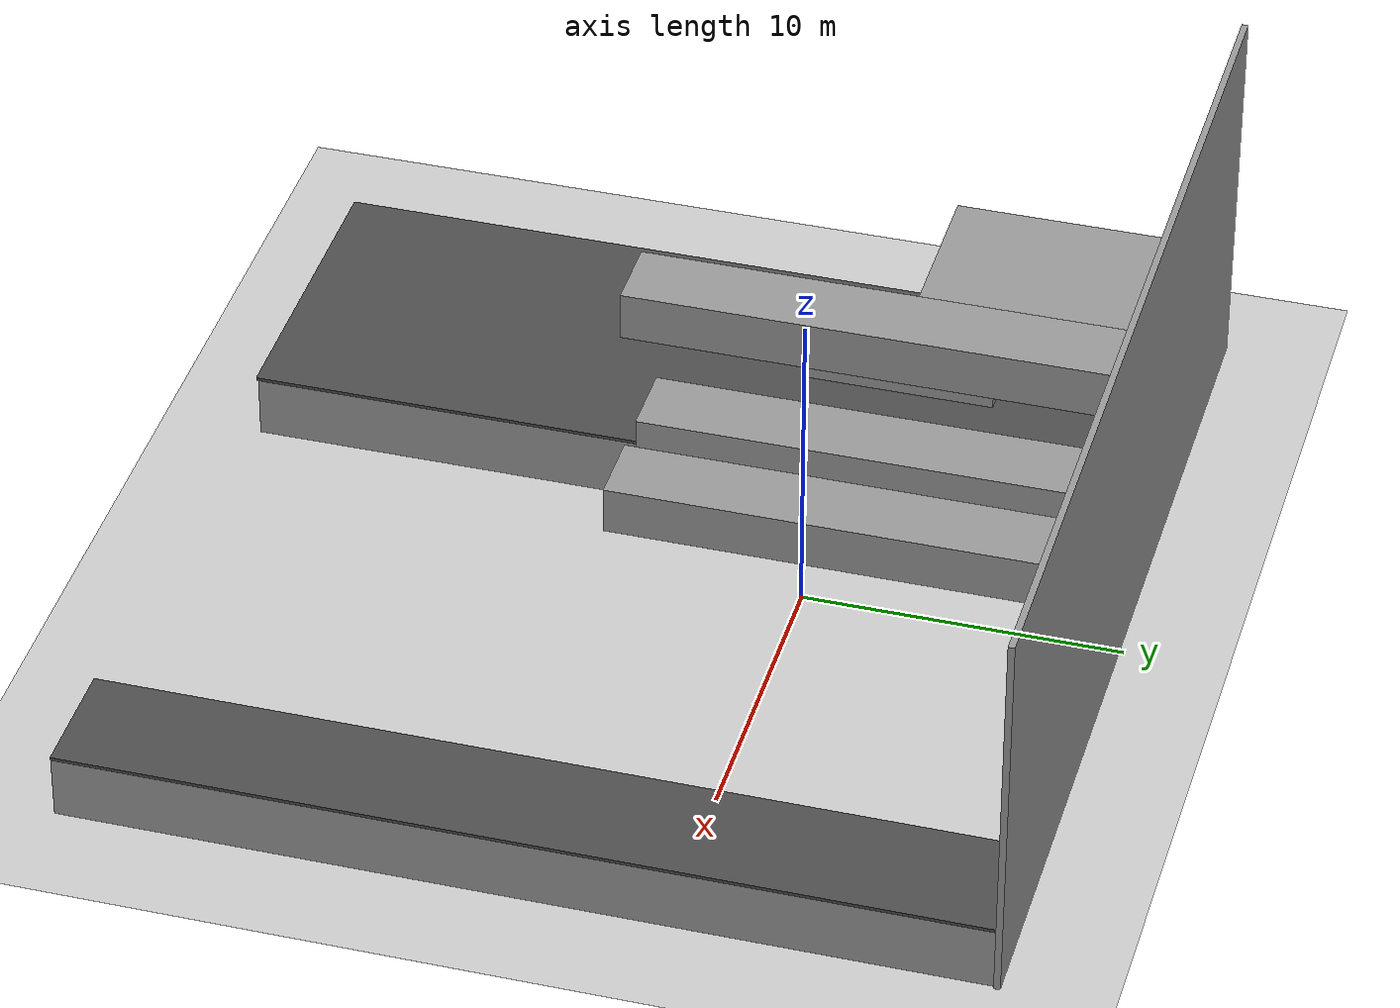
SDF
<sdf version="1.6">
 <world name="default">
  <light name="sun" type="directional">
   <pose>0 0 10 0 -0 0</pose>
   <diffuse>0.8 0.8 0.8 1</diffuse>
   <specular>0.2 0.2 0.2 1</specular>
   <attenuation>
    <range>1000</range>
    <constant>0.9</constant>
    <linear>0.01</linear>
    <quadratic>0.001</quadratic>
   </attenuation>
   <direction>-0.5 0.1 -0.9</direction>
  </light>
  <model name="ground_plane">
   <static>1</static>
   <link name="link">
    <collision name="collision">
     <geometry><plane><normal>0 0 1</normal><size>100 100</size></plane></geometry>
     <surface><friction><ode><mu>100</mu><mu2>50</mu2></ode></friction></surface>
    </collision>
    <visual name="visual">
     <cast_shadows>0</cast_shadows>
     <geometry><plane><normal>0 0 1</normal><size>100 100</size></plane></geometry>
     <material>
      <script><uri>file://media/materials/scripts/gazebo.material</uri><name>Gazebo/Grey</name></script>
     </material>
    </visual>
   </link>
  </model>
  <gravity>0 0 -9.8</gravity>
  <magnetic_field>6e-06 2.3e-05 -4.2e-05</magnetic_field>
  <atmosphere type="adiabatic"/>
  <physics name="default_physics" default="0" type="ode">
   <max_step_size>0.001</max_step_size>
   <real_time_factor>1</real_time_factor>
   <real_time_update_rate>1000</real_time_update_rate>
  </physics>
  <scene><ambient>0.4 0.4 0.4 1</ambient><background>0.7 0.7 0.7 1</background><shadows>1</shadows></scene>
  <spherical_coordinates>
   <surface_model>EARTH_WGS84</surface_model>
   <latitude_deg>0</latitude_deg>
   <longitude_deg>0</longitude_deg>
   <elevation>0</elevation>
   <heading_deg>0</heading_deg>
  </spherical_coordinates>
  <model name="wood_block_10_2_1cm">
   <link name="link">
    <pose>0 0 0.005 0 -0 0</pose>
    <inertial>
     <mass>0.0125</mass>
     <inertia>
      <ixx>7.55208e-07</ixx>
      <ixy>0</ixy>
      <ixz>0</ixz>
      <iyy>1.05208e-05</iyy>
      <iyz>0</iyz>
      <izz>1.10677e-05</izz>
     </inertia>
    </inertial>
    <collision name="collision">
     <geometry><box><size>0.1 0.025 0.01</size></box></geometry>
     <surface>
      <contact>
       <poissons_ratio>0.347</poissons_ratio>
       <elastic_modulus>8.8e+09</elastic_modulus>
       <ode><kp>100000</kp><kd>1</kd><max_vel>1</max_vel><min_depth>0.001</min_depth></ode>
      </contact>
      <friction>
       <torsional>
        <coefficient>1</coefficient>
        <use_patch_radius>0</use_patch_radius>
        <surface_radius>0.05</surface_radius>
       </torsional>
      </friction>
     </surface>
    </collision>
    <visual name="visual">
     <geometry><box><size>0.1 0.025 0.01</size></box></geometry>
     <material>
      <script><uri>file://media/materials/scripts/gazebo.material</uri><name>Gazebo/Wood</name></script>
     </material>
    </visual>
   </link>
   <pose>-15.2712 -9.75357 -0.001 0 -0 4e-06</pose>
  </model>
  <model name="stage_7_model_2">
   <link name="link_0">
    <inertial>
     <mass>1.78308</mass>
     <inertia><ixx>118.07</ixx><ixy>0</ixy><ixz>0</ixz><iyy>2.7027</iyy><iyz>0</iyz><izz>119.584</izz></inertia>
    </inertial>
    <pose>13.855 -4.6516 -0.856819 0 -0 0</pose>
    <visual name="visual">
     <geometry><box><size>3.76682 28.1177 2</size></box></geometry>
     <material>
      <lighting>1</lighting>
      <script><uri>file://media/materials/scripts/gazebo.material</uri><name>Gazebo/Grey</name></script>
      <shader type="pixel"><normal_map>__default__</normal_map></shader>
      <ambient>0.3 0.3 0.3 1</ambient>
      <diffuse>0.7 0.7 0.7 1</diffuse>
      <specular>0.01 0.01 0.01 1</specular>
      <emissive>0 0 0 1</emissive>
     </material>
    </visual>
    <collision name="collision">
     <geometry><box><size>3.76682 28.1177 2</size></box></geometry>
     <surface>
      <friction>
       <ode><mu>1</mu><mu2>1</mu2><fdir1>0 0 0</fdir1><slip1>0</slip1><slip2>0</slip2></ode>
       <torsional>
        <coefficient>1</coefficient>
        <patch_radius>0</patch_radius>
        <surface_radius>0</surface_radius>
        <use_patch_radius>1</use_patch_radius>
        <ode><slip>0</slip></ode>
       </torsional>
      </friction>
      <bounce><restitution_coefficient>0</restitution_coefficient><threshold>1e+06</threshold></bounce>
      <contact>
       <collide_without_contact>0</collide_without_contact>
       <collide_without_contact_bitmask>1</collide_without_contact_bitmask>
       <collide_bitmask>1</collide_bitmask>
       <ode>
        <soft_cfm>0</soft_cfm>
        <soft_erp>0.2</soft_erp>
        <kp>1e+13</kp>
        <kd>1</kd>
        <max_vel>0.01</max_vel>
        <min_depth>0</min_depth>
       </ode>
       <bullet>
        <split_impulse>1</split_impulse>
        <split_impulse_penetration_threshold>-0.01</split_impulse_penetration_threshold>
        <soft_cfm>0</soft_cfm>
        <soft_erp>0.2</soft_erp>
        <kp>1e+13</kp>
        <kd>1</kd>
       </bullet>
      </contact>
     </surface>
    </collision>
   </link>
   <link name="link_0_clone">
    <inertial>
     <mass>10.6661</mass>
     <inertia><ixx>166.876</ixx><ixy>0</ixy><ixz>0</ixz><iyy>92.4397</iyy><iyz>0</iyz><izz>252.205</izz></inertia>
    </inertial>
    <pose>-8.47443 -4.74682 -0.856819 0 -0 0</pose>
    <visual name="visual">
     <geometry><box><size>10 28.1177 2</size></box></geometry>
     <material>
      <lighting>1</lighting>
      <script><uri>file://media/materials/scripts/gazebo.material</uri><name>Gazebo/Grey</name></script>
      <shader type="pixel"><normal_map>__default__</normal_map></shader>
      <ambient>0.3 0.3 0.3 1</ambient>
      <diffuse>0.7 0.7 0.7 1</diffuse>
      <specular>0.01 0.01 0.01 1</specular>
      <emissive>0 0 0 1</emissive>
     </material>
    </visual>
    <collision name="collision">
     <geometry><box><size>10 28.1177 2</size></box></geometry>
     <surface>
      <friction>
       <ode><mu>1</mu><mu2>1</mu2><fdir1>0 0 0</fdir1><slip1>0</slip1><slip2>0</slip2></ode>
       <torsional>
        <coefficient>1</coefficient>
        <patch_radius>0</patch_radius>
        <surface_radius>0</surface_radius>
        <use_patch_radius>1</use_patch_radius>
        <ode><slip>0</slip></ode>
       </torsional>
      </friction>
      <bounce><restitution_coefficient>0</restitution_coefficient><threshold>1e+06</threshold></bounce>
      <contact>
       <collide_without_contact>0</collide_without_contact>
       <collide_without_contact_bitmask>1</collide_without_contact_bitmask>
       <collide_bitmask>1</collide_bitmask>
       <ode>
        <soft_cfm>0</soft_cfm>
        <soft_erp>0.2</soft_erp>
        <kp>1e+13</kp>
        <kd>1</kd>
        <max_vel>0.01</max_vel>
        <min_depth>0</min_depth>
       </ode>
       <bullet>
        <split_impulse>1</split_impulse>
        <split_impulse_penetration_threshold>-0.01</split_impulse_penetration_threshold>
        <soft_cfm>0</soft_cfm>
        <soft_erp>0.2</soft_erp>
        <kp>1e+13</kp>
        <kd>1</kd>
       </bullet>
      </contact>
     </surface>
    </collision>
   </link>
   <link name="link_1">
    <inertial>
     <mass>24.1218</mass>
     <inertia><ixx>434.512</ixx><ixy>0</ixy><ixz>0</ixz><iyy>14.6959</iyy><iyz>0</iyz><izz>440.95</izz></inertia>
    </inertial>
    <pose>0.09 2.1 3.9 0 -0 0</pose>
    <visual name="visual">
     <geometry><box><size>2.29274 14.6323 1.5</size></box></geometry>
     <material>
      <lighting>1</lighting>
      <script><uri>file://media/materials/scripts/gazebo.material</uri><name>Gazebo/Grey</name></script>
      <shader type="pixel"><normal_map>__default__</normal_map></shader>
      <emissive>0 0 0 1</emissive>
      <ambient>0.3 0.3 0.3 1</ambient>
      <diffuse>0.7 0.7 0.7 1</diffuse>
      <specular>0.01 0.01 0.01 1</specular>
     </material>
    </visual>
    <collision name="collision">
     <geometry><box><size>2.29274 14.6323 1.43324</size></box></geometry>
     <surface>
      <friction>
       <ode><mu>1</mu><mu2>1</mu2><fdir1>0 0 0</fdir1><slip1>0</slip1><slip2>0</slip2></ode>
       <torsional>
        <coefficient>1</coefficient>
        <patch_radius>0</patch_radius>
        <surface_radius>0</surface_radius>
        <use_patch_radius>1</use_patch_radius>
        <ode><slip>0</slip></ode>
       </torsional>
      </friction>
      <bounce><restitution_coefficient>0</restitution_coefficient><threshold>1e+06</threshold></bounce>
      <contact>
       <collide_without_contact>0</collide_without_contact>
       <collide_without_contact_bitmask>1</collide_without_contact_bitmask>
       <collide_bitmask>1</collide_bitmask>
       <ode>
        <soft_cfm>0</soft_cfm>
        <soft_erp>0.2</soft_erp>
        <kp>1e+13</kp>
        <kd>1</kd>
        <max_vel>0.01</max_vel>
        <min_depth>0</min_depth>
       </ode>
       <bullet>
        <split_impulse>1</split_impulse>
        <split_impulse_penetration_threshold>-0.01</split_impulse_penetration_threshold>
        <soft_cfm>0</soft_cfm>
        <soft_erp>0.2</soft_erp>
        <kp>1e+13</kp>
        <kd>1</kd>
       </bullet>
      </contact>
     </surface>
    </collision>
   </link>
   <link name="link_1_clone">
    <inertial>
     <mass>24.1218</mass>
     <inertia><ixx>434.512</ixx><ixy>0</ixy><ixz>0</ixz><iyy>14.6959</iyy><iyz>0</iyz><izz>440.95</izz></inertia>
    </inertial>
    <pose>3.6 2.1 3.9 -1e-06 -0 -0.0008</pose>
    <visual name="visual">
     <geometry><box><size>2.29274 14.6323 1.5</size></box></geometry>
     <material>
      <lighting>1</lighting>
      <script><uri>file://media/materials/scripts/gazebo.material</uri><name>Gazebo/Grey</name></script>
      <shader type="pixel"><normal_map>__default__</normal_map></shader>
      <emissive>0 0 0 1</emissive>
      <ambient>0.3 0.3 0.3 1</ambient>
      <diffuse>0.7 0.7 0.7 1</diffuse>
      <specular>0.01 0.01 0.01 1</specular>
     </material>
    </visual>
    <collision name="collision">
     <geometry><box><size>2.29274 14.6323 1.43324</size></box></geometry>
     <surface>
      <friction>
       <ode><mu>1</mu><mu2>1</mu2><fdir1>0 0 0</fdir1><slip1>0</slip1><slip2>0</slip2></ode>
       <torsional>
        <coefficient>1</coefficient>
        <patch_radius>0</patch_radius>
        <surface_radius>0</surface_radius>
        <use_patch_radius>1</use_patch_radius>
        <ode><slip>0</slip></ode>
       </torsional>
      </friction>
      <bounce><restitution_coefficient>0</restitution_coefficient><threshold>1e+06</threshold></bounce>
      <contact>
       <collide_without_contact>0</collide_without_contact>
       <collide_without_contact_bitmask>1</collide_without_contact_bitmask>
       <collide_bitmask>1</collide_bitmask>
       <ode>
        <soft_cfm>0</soft_cfm>
        <soft_erp>0.2</soft_erp>
        <kp>1e+13</kp>
        <kd>1</kd>
        <max_vel>0.01</max_vel>
        <min_depth>0</min_depth>
       </ode>
       <bullet>
        <split_impulse>1</split_impulse>
        <split_impulse_penetration_threshold>-0.01</split_impulse_penetration_threshold>
        <soft_cfm>0</soft_cfm>
        <soft_erp>0.2</soft_erp>
        <kp>1e+13</kp>
        <kd>1</kd>
       </bullet>
      </contact>
     </surface>
    </collision>
   </link>
   <link name="link_1_clone_0">
    <inertial>
     <mass>24.1218</mass>
     <inertia><ixx>434.512</ixx><ixy>0</ixy><ixz>0</ixz><iyy>14.6959</iyy><iyz>0</iyz><izz>440.95</izz></inertia>
    </inertial>
    <pose>1.7 2.1 9.61321 -1e-06 -0 -0.0008</pose>
    <visual name="visual">
     <geometry><box><size>2.29274 14.6323 1.5</size></box></geometry>
     <material>
      <lighting>1</lighting>
      <script><uri>file://media/materials/scripts/gazebo.material</uri><name>Gazebo/Grey</name></script>
      <shader type="pixel"><normal_map>__default__</normal_map></shader>
      <emissive>0 0 0 1</emissive>
      <ambient>0.3 0.3 0.3 1</ambient>
      <diffuse>0.7 0.7 0.7 1</diffuse>
      <specular>0.01 0.01 0.01 1</specular>
     </material>
    </visual>
    <collision name="collision">
     <geometry><box><size>2.29274 14.6323 1.43324</size></box></geometry>
     <surface>
      <friction>
       <ode><mu>1</mu><mu2>1</mu2><fdir1>0 0 0</fdir1><slip1>0</slip1><slip2>0</slip2></ode>
       <torsional>
        <coefficient>1</coefficient>
        <patch_radius>0</patch_radius>
        <surface_radius>0</surface_radius>
        <use_patch_radius>1</use_patch_radius>
        <ode><slip>0</slip></ode>
       </torsional>
      </friction>
      <bounce><restitution_coefficient>0</restitution_coefficient><threshold>1e+06</threshold></bounce>
      <contact>
       <collide_without_contact>0</collide_without_contact>
       <collide_without_contact_bitmask>1</collide_without_contact_bitmask>
       <collide_bitmask>1</collide_bitmask>
       <ode>
        <soft_cfm>0</soft_cfm>
        <soft_erp>0.2</soft_erp>
        <kp>1e+13</kp>
        <kd>1</kd>
        <max_vel>0.01</max_vel>
        <min_depth>0</min_depth>
       </ode>
       <bullet>
        <split_impulse>1</split_impulse>
        <split_impulse_penetration_threshold>-0.01</split_impulse_penetration_threshold>
        <soft_cfm>0</soft_cfm>
        <soft_erp>0.2</soft_erp>
        <kp>1e+13</kp>
        <kd>1</kd>
       </bullet>
      </contact>
     </surface>
    </collision>
   </link>
   <link name="link_1_clone_1">
    <inertial>
     <mass>5.82419</mass>
     <inertia><ixx>30.9448</ixx><ixy>0</ixy><ixz>0</ixz><iyy>29.8324</iyy><iyz>0</iyz><izz>60.7438</izz></inertia>
    </inertial>
    <pose>-8.30541 5.41023 4.61431 -1e-06 -0 -0.0008</pose>
    <visual name="visual">
     <geometry><box><size>7.83783 7.98269 0.194134</size></box></geometry>
     <material>
      <lighting>1</lighting>
      <script><uri>file://media/materials/scripts/gazebo.material</uri><name>Gazebo/Grey</name></script>
      <shader type="pixel"><normal_map>__default__</normal_map></shader>
      <emissive>0 0 0 1</emissive>
      <ambient>0.3 0.3 0.3 1</ambient>
      <diffuse>0.7 0.7 0.7 1</diffuse>
      <specular>0.01 0.01 0.01 1</specular>
     </material>
    </visual>
    <collision name="collision">
     <geometry><box><size>7.83783 7.98269 0.185493</size></box></geometry>
     <surface>
      <friction>
       <ode><mu>1</mu><mu2>1</mu2><fdir1>0 0 0</fdir1><slip1>0</slip1><slip2>0</slip2></ode>
       <torsional>
        <coefficient>1</coefficient>
        <patch_radius>0</patch_radius>
        <surface_radius>0</surface_radius>
        <use_patch_radius>1</use_patch_radius>
        <ode><slip>0</slip></ode>
       </torsional>
      </friction>
      <bounce><restitution_coefficient>0</restitution_coefficient><threshold>1e+06</threshold></bounce>
      <contact>
       <collide_without_contact>0</collide_without_contact>
       <collide_without_contact_bitmask>1</collide_without_contact_bitmask>
       <collide_bitmask>1</collide_bitmask>
       <ode>
        <soft_cfm>0</soft_cfm>
        <soft_erp>0.2</soft_erp>
        <kp>1e+13</kp>
        <kd>1</kd>
        <max_vel>0.01</max_vel>
        <min_depth>0</min_depth>
       </ode>
       <bullet>
        <split_impulse>1</split_impulse>
        <split_impulse_penetration_threshold>-0.01</split_impulse_penetration_threshold>
        <soft_cfm>0</soft_cfm>
        <soft_erp>0.2</soft_erp>
        <kp>1e+13</kp>
        <kd>1</kd>
       </bullet>
      </contact>
     </surface>
    </collision>
   </link>
   <link name="link_1_clone_2">
    <inertial>
     <mass>18.0184</mass>
     <inertia><ixx>53.9959</ixx><ixy>0</ixy><ixz>0</ixz><iyy>0.750769</iyy><iyz>0</iyz><izz>53.9959</izz></inertia>
    </inertial>
    <pose>-8.34722 0.661434 0.412087 -1e-06 -0 -0.0008</pose>
    <visual name="visual">
     <geometry><box><size>0.5 5.97582 0.5</size></box></geometry>
     <material>
      <lighting>1</lighting>
      <script><uri>file://media/materials/scripts/gazebo.material</uri><name>Gazebo/Grey</name></script>
      <shader type="pixel"><normal_map>__default__</normal_map></shader>
      <emissive>0 0 0 1</emissive>
      <ambient>0.3 0.3 0.3 1</ambient>
      <diffuse>0.7 0.7 0.7 1</diffuse>
      <specular>0.01 0.01 0.01 1</specular>
     </material>
    </visual>
    <collision name="collision">
     <geometry><box><size>0.5 5.97582 0.5</size></box></geometry>
     <surface>
      <friction>
       <ode><mu>1</mu><mu2>1</mu2><fdir1>0 0 0</fdir1><slip1>0</slip1><slip2>0</slip2></ode>
       <torsional>
        <coefficient>1</coefficient>
        <patch_radius>0</patch_radius>
        <surface_radius>0</surface_radius>
        <use_patch_radius>1</use_patch_radius>
        <ode><slip>0</slip></ode>
       </torsional>
      </friction>
      <bounce><restitution_coefficient>0</restitution_coefficient><threshold>1e+06</threshold></bounce>
      <contact>
       <collide_without_contact>0</collide_without_contact>
       <collide_without_contact_bitmask>1</collide_without_contact_bitmask>
       <collide_bitmask>1</collide_bitmask>
       <ode>
        <soft_cfm>0</soft_cfm>
        <soft_erp>0.2</soft_erp>
        <kp>1e+13</kp>
        <kd>1</kd>
        <max_vel>0.01</max_vel>
        <min_depth>0</min_depth>
       </ode>
       <bullet>
        <split_impulse>1</split_impulse>
        <split_impulse_penetration_threshold>-0.01</split_impulse_penetration_threshold>
        <soft_cfm>0</soft_cfm>
        <soft_erp>0.2</soft_erp>
        <kp>1e+13</kp>
        <kd>1</kd>
       </bullet>
      </contact>
     </surface>
    </collision>
   </link>
   <link name="link_2">
    <inertial>
     <mass>67.2458</mass>
     <inertia><ixx>850.125</ixx><ixy>0</ixy><ixz>0</ixz><iyy>6525.54</iyy><iyz>0</iyz><izz>5675.86</izz></inertia>
    </inertial>
    <pose>-0.057927 9.45419 4.31508 0 -0 0</pose>
    <visual name="visual">
     <geometry><box><size>31.8248 0.2 12.3152</size></box></geometry>
     <material>
      <lighting>1</lighting>
      <script><uri>file://media/materials/scripts/gazebo.material</uri><name>Gazebo/Grey</name></script>
      <shader type="pixel"><normal_map>__default__</normal_map></shader>
      <ambient>0.3 0.3 0.3 1</ambient>
      <diffuse>0.7 0.7 0.7 1</diffuse>
      <specular>0.01 0.01 0.01 1</specular>
      <emissive>0 0 0 1</emissive>
     </material>
    </visual>
    <collision name="collision">
     <geometry><box><size>31.8248 0.2 12.3152</size></box></geometry>
     <surface>
      <friction>
       <ode><mu>1</mu><mu2>1</mu2><fdir1>0 0 0</fdir1><slip1>0</slip1><slip2>0</slip2></ode>
       <torsional>
        <coefficient>1</coefficient>
        <patch_radius>0</patch_radius>
        <surface_radius>0</surface_radius>
        <use_patch_radius>1</use_patch_radius>
        <ode><slip>0</slip></ode>
       </torsional>
      </friction>
      <bounce><restitution_coefficient>0</restitution_coefficient><threshold>1e+06</threshold></bounce>
      <contact>
       <collide_without_contact>0</collide_without_contact>
       <collide_without_contact_bitmask>1</collide_without_contact_bitmask>
       <collide_bitmask>1</collide_bitmask>
       <ode>
        <soft_cfm>0</soft_cfm>
        <soft_erp>0.2</soft_erp>
        <kp>1e+13</kp>
        <kd>1</kd>
        <max_vel>0.01</max_vel>
        <min_depth>0</min_depth>
       </ode>
       <bullet>
        <split_impulse>1</split_impulse>
        <split_impulse_penetration_threshold>-0.01</split_impulse_penetration_threshold>
        <soft_cfm>0</soft_cfm>
        <soft_erp>0.2</soft_erp>
        <kp>1e+13</kp>
        <kd>1</kd>
       </bullet>
      </contact>
     </surface>
    </collision>
   </link>
   <joint name="link_0_clone_JOINT_4" type="fixed">
    <parent>link_0_clone</parent>
    <child>link_1_clone_2</child>
    <physics>
     <ode><limit><cfm>0</cfm><erp>0.2</erp></limit><suspension><cfm>0</cfm><erp>0.2</erp></suspension></ode>
    </physics>
   </joint>
   <joint name="link_2_JOINT_0" type="fixed">
    <parent>link_2</parent>
    <child>link_0_clone</child>
    <physics>
     <ode><limit><cfm>0</cfm><erp>0.2</erp></limit><suspension><cfm>0</cfm><erp>0.2</erp></suspension></ode>
    </physics>
   </joint>
   <joint name="link_2_JOINT_1" type="fixed">
    <parent>link_2</parent>
    <child>link_1_clone_1</child>
    <physics>
     <ode><limit><cfm>0</cfm><erp>0.2</erp></limit><suspension><cfm>0</cfm><erp>0.2</erp></suspension></ode>
    </physics>
   </joint>
   <joint name="link_2_JOINT_2" type="fixed">
    <parent>link_2</parent>
    <child>link_1</child>
    <physics>
     <ode><limit><cfm>0</cfm><erp>0.2</erp></limit><suspension><cfm>0</cfm><erp>0.2</erp></suspension></ode>
    </physics>
   </joint>
   <joint name="link_2_JOINT_3" type="fixed">
    <parent>link_2</parent>
    <child>link_1_clone</child>
    <physics>
     <ode><limit><cfm>0</cfm><erp>0.2</erp></limit><suspension><cfm>0</cfm><erp>0.2</erp></suspension></ode>
    </physics>
   </joint>
   <joint name="link_2_JOINT_5" type="fixed">
    <parent>link_2</parent>
    <child>link_0</child>
    <physics>
     <ode><limit><cfm>0</cfm><erp>0.2</erp></limit><suspension><cfm>0</cfm><erp>0.2</erp></suspension></ode>
    </physics>
   </joint>
   <joint name="link_2_JOINT_6" type="fixed">
    <parent>link_2</parent>
    <child>link_1_clone_0</child>
    <physics>
     <ode><limit><cfm>0</cfm><erp>0.2</erp></limit><suspension><cfm>0</cfm><erp>0.2</erp></suspension></ode>
    </physics>
   </joint>
   <static>1</static>
   <pose>-0.021434 0.325976 1.8799 -0.000942 -2e-06 0.001148</pose>
  </model>
  <plugin name="gazebo_octomap" filename="librotors_gazebo_octomap_plugin.so"/>
  <model name="asphalt_plane_cover_2">
   <link name="link">
    <inertial>
     <inertia><ixx>0</ixx><ixy>0</ixy><ixz>0</ixz><iyy>0</iyy><iyz>0</iyz><izz>0</izz></inertia>
     <mass>0</mass>
    </inertial>
    <pose>-8.30308 4.08482 -0.989863 0 -0 0</pose>
    <visual name="visual">
     <cast_shadows>0</cast_shadows>
     <geometry><box><size>3.76682 28.1177 0.1</size></box></geometry>
     <material>
      <script>
       <uri>model://asphalt_plane/materials/scripts</uri>
       <uri>model://asphalt_plane/materials/textures</uri>
       <name>vrc/asphalt</name>
      </script>
      <shader type="pixel"><normal_map>__default__</normal_map></shader>
      <ambient>0.5 0.5 0.5 1</ambient>
      <diffuse>0.5 0.5 0.5 1</diffuse>
      <specular>0.2 0.2 0.2 1</specular>
      <emissive>0 0 0 1</emissive>
     </material>
    </visual>
    <collision name="collision">
     <geometry><box><size>3.76682 28.1177 0.1</size></box></geometry>
     <surface>
      <friction>
       <ode><mu>1</mu><mu2>1</mu2><fdir1>0 0 0</fdir1><slip1>0</slip1><slip2>0</slip2></ode>
       <torsional>
        <coefficient>1</coefficient>
        <patch_radius>0</patch_radius>
        <surface_radius>0</surface_radius>
        <use_patch_radius>1</use_patch_radius>
        <ode><slip>0</slip></ode>
       </torsional>
      </friction>
      <bounce><restitution_coefficient>0</restitution_coefficient><threshold>1e+06</threshold></bounce>
      <contact>
       <collide_without_contact>0</collide_without_contact>
       <collide_without_contact_bitmask>1</collide_without_contact_bitmask>
       <collide_bitmask>1</collide_bitmask>
       <ode>
        <soft_cfm>0</soft_cfm>
        <soft_erp>0.2</soft_erp>
        <kp>1e+13</kp>
        <kd>1</kd>
        <max_vel>0.01</max_vel>
        <min_depth>0</min_depth>
       </ode>
       <bullet>
        <split_impulse>1</split_impulse>
        <split_impulse_penetration_threshold>-0.01</split_impulse_penetration_threshold>
        <soft_cfm>0</soft_cfm>
        <soft_erp>0.2</soft_erp>
        <kp>1e+13</kp>
        <kd>1</kd>
       </bullet>
      </contact>
     </surface>
    </collision>
   </link>
   <static>1</static>
   <pose>22.1511 -8.4 3.07536 0 -0 0</pose>
  </model>
  <model name="asphalt_plane_cover_1">
   <link name="link">
    <inertial>
     <inertia><ixx>0</ixx><ixy>0</ixy><ixz>0</ixz><iyy>0</iyy><iyz>0</iyz><izz>0</izz></inertia>
     <mass>0</mass>
    </inertial>
    <pose>-8.13269 4.08482 -0.989863 0 -0 0</pose>
    <visual name="visual">
     <cast_shadows>0</cast_shadows>
     <geometry><box><size>10 28.1177 0.1</size></box></geometry>
     <material>
      <script>
       <uri>model://asphalt_plane/materials/scripts</uri>
       <uri>model://asphalt_plane/materials/textures</uri>
       <name>vrc/asphalt</name>
      </script>
      <shader type="pixel"><normal_map>__default__</normal_map></shader>
      <ambient>0.5 0.5 0.5 1</ambient>
      <diffuse>0.5 0.5 0.5 1</diffuse>
      <specular>0.2 0.2 0.2 1</specular>
      <emissive>0 0 0 1</emissive>
     </material>
    </visual>
    <collision name="collision">
     <geometry><box><size>10 28.1177 0.1</size></box></geometry>
     <surface>
      <friction>
       <ode><mu>1</mu><mu2>1</mu2><fdir1>0 0 0</fdir1><slip1>0</slip1><slip2>0</slip2></ode>
       <torsional>
        <coefficient>1</coefficient>
        <patch_radius>0</patch_radius>
        <surface_radius>0</surface_radius>
        <use_patch_radius>1</use_patch_radius>
        <ode><slip>0</slip></ode>
       </torsional>
      </friction>
      <bounce><restitution_coefficient>0</restitution_coefficient><threshold>1e+06</threshold></bounce>
      <contact>
       <collide_without_contact>0</collide_without_contact>
       <collide_without_contact_bitmask>1</collide_without_contact_bitmask>
       <collide_bitmask>1</collide_bitmask>
       <ode>
        <soft_cfm>0</soft_cfm>
        <soft_erp>0.2</soft_erp>
        <kp>1e+13</kp>
        <kd>1</kd>
        <max_vel>0.01</max_vel>
        <min_depth>0</min_depth>
       </ode>
       <bullet>
        <split_impulse>1</split_impulse>
        <split_impulse_penetration_threshold>-0.01</split_impulse_penetration_threshold>
        <soft_cfm>0</soft_cfm>
        <soft_erp>0.2</soft_erp>
        <kp>1e+13</kp>
        <kd>1</kd>
       </bullet>
      </contact>
     </surface>
    </collision>
   </link>
   <static>1</static>
   <pose>-0.33536 -8.56839 3.07537 0 -0 0</pose>
  </model>
 </world>
</sdf>
